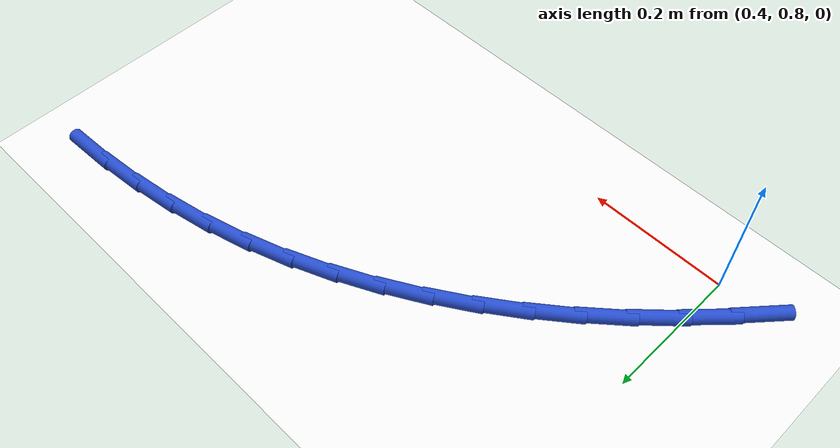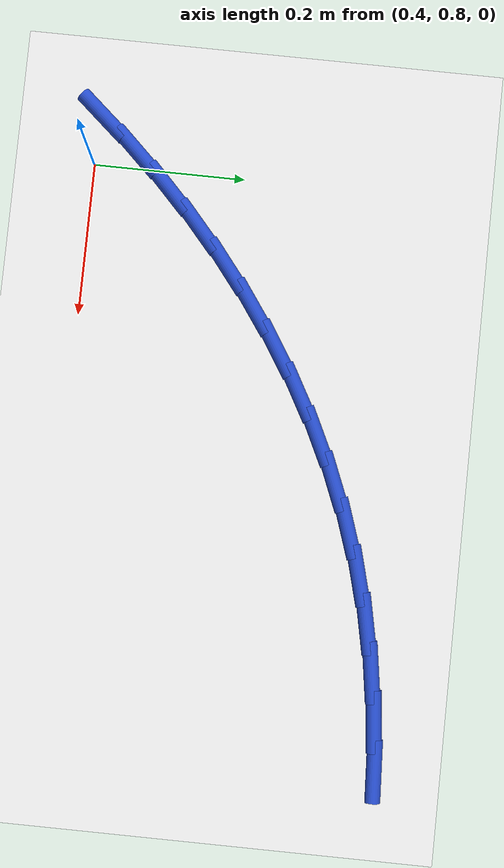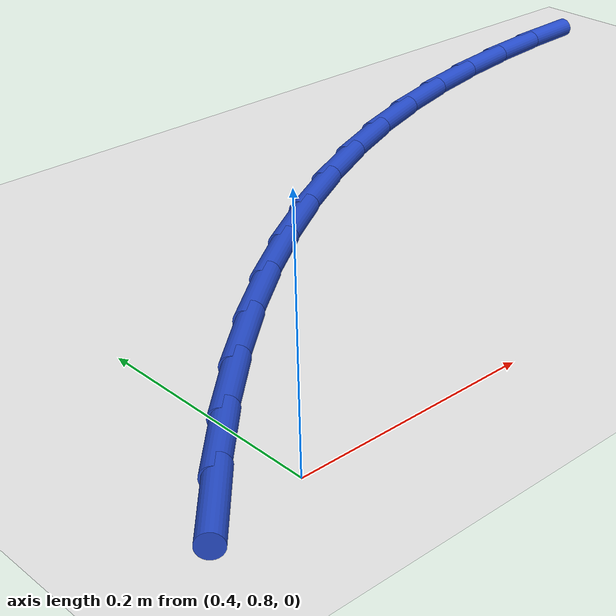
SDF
<sdf version="1.6">
 <world name="default">
  <model name="ground_plane">
   <static>1</static>
   <link name="link">
    <collision name="collision">
     <geometry><plane><normal>0 0 1</normal><size>100 100</size></plane></geometry>
     <surface><friction><ode><mu>100</mu><mu2>50</mu2></ode></friction></surface>
    </collision>
    <visual name="visual">
     <cast_shadows>0</cast_shadows>
     <geometry><plane><normal>0 0 1</normal><size>100 100</size></plane></geometry>
     <material>
      <script><uri>file://media/materials/scripts/gazebo.material</uri><name>Gazebo/WhiteGlow</name></script>
     </material>
    </visual>
   </link>
  </model>
  <model name="line">
   <link name="link_14">
    <pose>0.3364057993302302 0.8063786239732252 0.01 0 1.57 0.8488657981931963</pose>
    <collision name="collision">
     <geometry><cylinder><radius>0.01</radius><length>0.08</length></cylinder></geometry>
    </collision>
    <visual name="visual">
     <material>
      <script><name>Gazebo/Blue</name><uri>file://media/materials/scripts/gazebo.material</uri></script>
     </material>
     <geometry><cylinder><radius>0.01</radius><length>0.08</length></cylinder></geometry>
    </visual>
   </link>
   <link name="link_15">
    <pose>0.37917436880782457 0.8549522640919267 0.01 0 1.57 0.8050364229126725</pose>
    <collision name="collision">
     <geometry><cylinder><radius>0.01</radius><length>0.08</length></cylinder></geometry>
    </collision>
    <visual name="visual">
     <material>
      <script><name>Gazebo/Blue</name><uri>file://media/materials/scripts/gazebo.material</uri></script>
     </material>
     <geometry><cylinder><radius>0.01</radius><length>0.08</length></cylinder></geometry>
    </visual>
   </link>
   <link name="link_16">
    <pose>0.4239145664928471 0.9014851364746636 0.01 0 1.57 0.7597411853376826</pose>
    <collision name="collision">
     <geometry><cylinder><radius>0.01</radius><length>0.08</length></cylinder></geometry>
    </collision>
    <visual name="visual">
     <material>
      <script><name>Gazebo/Blue</name><uri>file://media/materials/scripts/gazebo.material</uri></script>
     </material>
     <geometry><cylinder><radius>0.01</radius><length>0.08</length></cylinder></geometry>
    </visual>
   </link>
   <link name="link_17">
    <pose>0.4705542764221476 0.945790947037424 0.01 0 1.57 0.7127651649578537</pose>
    <collision name="collision">
     <geometry><cylinder><radius>0.01</radius><length>0.08</length></cylinder></geometry>
    </collision>
    <visual name="visual">
     <material>
      <script><name>Gazebo/Blue</name><uri>file://media/materials/scripts/gazebo.material</uri></script>
     </material>
     <geometry><cylinder><radius>0.01</radius><length>0.08</length></cylinder></geometry>
    </visual>
   </link>
   <link name="link_18">
    <pose>0.5190213826325758 0.9876834016961964 0.01 0 1.57 0.663902019683492</pose>
    <collision name="collision">
     <geometry><cylinder><radius>0.01</radius><length>0.08</length></cylinder></geometry>
    </collision>
    <visual name="visual">
     <material>
      <script><name>Gazebo/Blue</name><uri>file://media/materials/scripts/gazebo.material</uri></script>
     </material>
     <geometry><cylinder><radius>0.01</radius><length>0.08</length></cylinder></geometry>
    </visual>
   </link>
   <link name="link_19">
    <pose>0.5692437691609811 1.0269762063669685 0.01 0 1.57 0.6129590382857699</pose>
    <collision name="collision">
     <geometry><cylinder><radius>0.01</radius><length>0.08</length></cylinder></geometry>
    </collision>
    <visual name="visual">
     <material>
      <script><name>Gazebo/Blue</name><uri>file://media/materials/scripts/gazebo.material</uri></script>
     </material>
     <geometry><cylinder><radius>0.01</radius><length>0.08</length></cylinder></geometry>
    </visual>
   </link>
   <link name="link_20">
    <pose>0.6211493200442135 1.0634830669657294 0.01 0 1.57 0.5597640954271947</pose>
    <collision name="collision">
     <geometry><cylinder><radius>0.01</radius><length>0.08</length></cylinder></geometry>
    </collision>
    <visual name="visual">
     <material>
      <script><name>Gazebo/Blue</name><uri>file://media/materials/scripts/gazebo.material</uri></script>
     </material>
     <geometry><cylinder><radius>0.01</radius><length>0.08</length></cylinder></geometry>
    </visual>
   </link>
   <link name="link_21">
    <pose>0.6746659193191227 1.0970176894084658 0.01 0 1.57 0.5041746565627531</pose>
    <collision name="collision">
     <geometry><cylinder><radius>0.01</radius><length>0.08</length></cylinder></geometry>
    </collision>
    <visual name="visual">
     <material>
      <script><name>Gazebo/Blue</name><uri>file://media/materials/scripts/gazebo.material</uri></script>
     </material>
     <geometry><cylinder><radius>0.01</radius><length>0.08</length></cylinder></geometry>
    </visual>
   </link>
   <link name="link_22">
    <pose>0.7297214510225583 1.1273937796111673 0.01 0 1.57 0.4460887958740359</pose>
    <collision name="collision">
     <geometry><cylinder><radius>0.01</radius><length>0.08</length></cylinder></geometry>
    </collision>
    <visual name="visual">
     <material>
      <script><name>Gazebo/Blue</name><uri>file://media/materials/scripts/gazebo.material</uri></script>
     </material>
     <geometry><cylinder><radius>0.01</radius><length>0.08</length></cylinder></geometry>
    </visual>
   </link>
   <link name="link_23">
    <pose>0.7862437991913702 1.1544250434898216 0.01 0 1.57 0.3854578864330036</pose>
    <collision name="collision">
     <geometry><cylinder><radius>0.01</radius><length>0.08</length></cylinder></geometry>
    </collision>
    <visual name="visual">
     <material>
      <script><name>Gazebo/Blue</name><uri>file://media/materials/scripts/gazebo.material</uri></script>
     </material>
     <geometry><cylinder><radius>0.01</radius><length>0.08</length></cylinder></geometry>
    </visual>
   </link>
   <link name="link_24">
    <pose>0.8441608478624076 1.1779251869604161 0.01 0 1.57 0.3223334246802119</pose>
    <collision name="collision">
     <geometry><cylinder><radius>0.01</radius><length>0.08</length></cylinder></geometry>
    </collision>
    <visual name="visual">
     <material>
      <script><name>Gazebo/Blue</name><uri>file://media/materials/scripts/gazebo.material</uri></script>
     </material>
     <geometry><cylinder><radius>0.01</radius><length>0.08</length></cylinder></geometry>
    </visual>
   </link>
   <link name="link_25">
    <pose>0.9033994876103231 1.1977097726058301 0.01 0 1.57 0.2592585152409437</pose>
    <collision name="collision">
     <geometry><cylinder><radius>0.01</radius><length>0.08</length></cylinder></geometry>
    </collision>
    <visual name="visual">
     <material>
      <script><name>Gazebo/Blue</name><uri>file://media/materials/scripts/gazebo.material</uri></script>
     </material>
     <geometry><cylinder><radius>0.01</radius><length>0.08</length></cylinder></geometry>
    </visual>
   </link>
   <link name="link_26">
    <pose>0.9638124460544671 1.2137329650652273 0.01 0 1.57 0.20029401096433272</pose>
    <collision name="collision">
     <geometry><cylinder><radius>0.01</radius><length>0.08</length></cylinder></geometry>
    </collision>
    <visual name="visual">
     <material>
      <script><name>Gazebo/Blue</name><uri>file://media/materials/scripts/gazebo.material</uri></script>
     </material>
     <geometry><cylinder><radius>0.01</radius><length>0.08</length></cylinder></geometry>
    </visual>
   </link>
   <link name="link_27">
    <pose>1.025128241688415 1.22618106158594 0.01 0 1.57 0.14559028320115427</pose>
    <collision name="collision">
     <geometry><cylinder><radius>0.01</radius><length>0.08</length></cylinder></geometry>
    </collision>
    <visual name="visual">
     <material>
      <script><name>Gazebo/Blue</name><uri>file://media/materials/scripts/gazebo.material</uri></script>
     </material>
     <geometry><cylinder><radius>0.01</radius><length>0.08</length></cylinder></geometry>
    </visual>
   </link>
   <link name="link_28">
    <pose>1.0870635480875541 1.2352624962086627 0.01 0 1.57 0.09483375728913247</pose>
    <collision name="collision">
     <geometry><cylinder><radius>0.01</radius><length>0.08</length></cylinder></geometry>
    </collision>
    <visual name="visual">
     <material>
      <script><name>Gazebo/Blue</name><uri>file://media/materials/scripts/gazebo.material</uri></script>
     </material>
     <geometry><cylinder><radius>0.01</radius><length>0.08</length></cylinder></geometry>
    </visual>
   </link>
   <link name="link_29">
    <pose>1.1493350388272747 1.2411857029740934 0.01 0 1.57 0.04767240861253793</pose>
    <collision name="collision">
     <geometry><cylinder><radius>0.01</radius><length>0.08</length></cylinder></geometry>
    </collision>
    <visual name="visual">
     <material>
      <script><name>Gazebo/Blue</name><uri>file://media/materials/scripts/gazebo.material</uri></script>
     </material>
     <geometry><cylinder><radius>0.01</radius><length>0.08</length></cylinder></geometry>
    </visual>
   </link>
  </model>
 </world>
</sdf>
